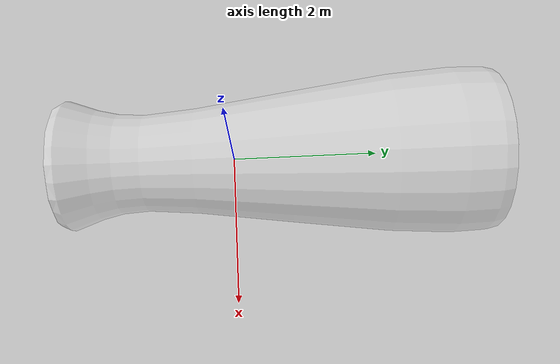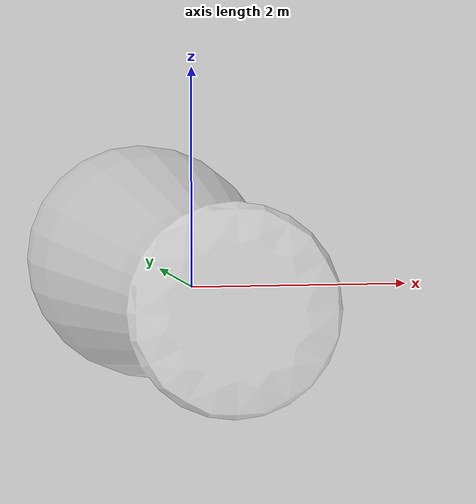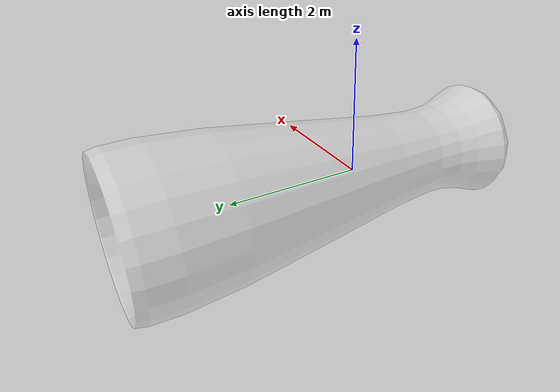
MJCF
<mujoco model="beer_glass">
  <asset>
    <mesh file="meshes/beer_glass.obj" name="beer_glass_mesh"/>

    <material name="beer_glass_material" rgba="0.9 0.9 0.9 0.5" shininess="0.5" specular="0.5"/>
  </asset>

  <worldbody>
    <body>
      <body name="object">
        <geom pos="0 0 0" mesh="beer_glass_mesh" type="mesh"
              density="250" friction="0.95 0.3 0.1" material="beer_glass_material"
              contype="0" conaffinity="0" group="1"/>

        <geom pos="0 0 0" mesh="beer_glass_mesh" type="mesh"
              density="250" friction="0.95 0.3 0.1" material="beer_glass_material"
              group="0"/>

        </body>

      <site rgba="0 0 0 0" size="0.005" pos="0 0 -0.09" name="bottom_site"/>
      <site rgba="0 0 0 0" size="0.005" pos="0 0 0.09" name="top_site"/>
      <site rgba="0 0 0 0" size="0.005" pos="0.035 0 0" name="horizontal_radius_site"/>
    </body>
  </worldbody>
</mujoco>
